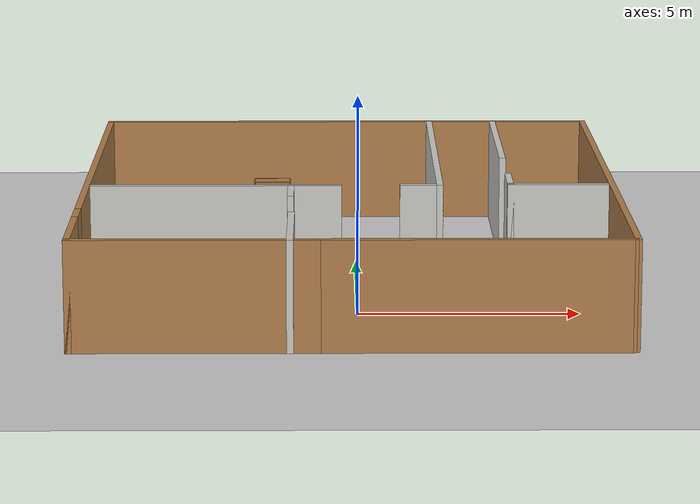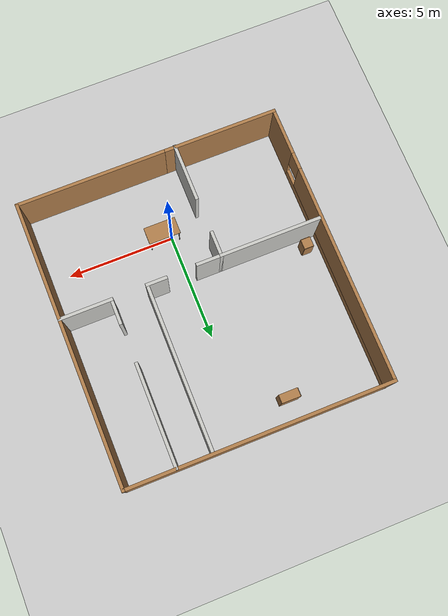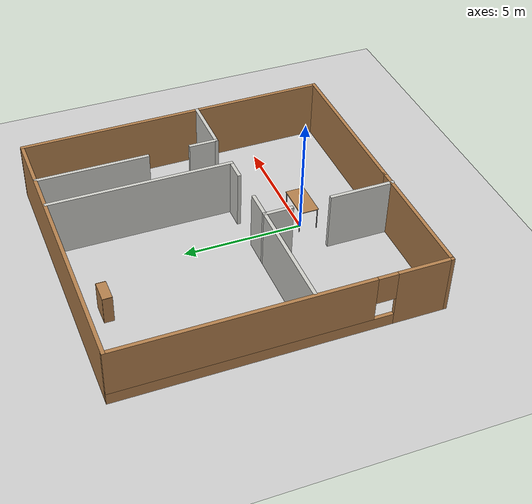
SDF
<sdf version="1.7">
 <world name="default">
  <light name="sun" type="directional">
   <pose>0 0 10 0 -0 0</pose>
   <diffuse>0.8 0.8 0.8 1</diffuse>
   <specular>0.2 0.2 0.2 1</specular>
   <attenuation>
    <range>1000</range>
    <constant>0.9</constant>
    <linear>0.01</linear>
    <quadratic>0.001</quadratic>
   </attenuation>
   <direction>-0.5 0.1 -0.9</direction>
   <spot><inner_angle>0</inner_angle><outer_angle>0</outer_angle><falloff>0</falloff></spot>
  </light>
  <model name="ground_plane">
   <static>1</static>
   <link name="link">
    <collision name="collision">
     <geometry><plane><normal>0 0 1</normal><size>100 100</size></plane></geometry>
     <surface>
      <contact><collide_bitmask>65535</collide_bitmask></contact>
      <friction><ode><mu>100</mu><mu2>50</mu2></ode></friction>
     </surface>
    </collision>
    <visual name="visual">
     <cast_shadows>0</cast_shadows>
     <geometry><plane><normal>0 0 1</normal><size>100 100</size></plane></geometry>
     <material>
      <script><uri>file://media/materials/scripts/gazebo.material</uri><name>Gazebo/Grey</name></script>
     </material>
    </visual>
   </link>
  </model>
  <gravity>0 0 -9.8</gravity>
  <magnetic_field>6e-06 2.3e-05 -4.2e-05</magnetic_field>
  <atmosphere type="adiabatic"/>
  <physics type="ode">
   <max_step_size>0.001</max_step_size>
   <real_time_factor>1</real_time_factor>
   <real_time_update_rate>1000</real_time_update_rate>
  </physics>
  <scene><ambient>0.4 0.4 0.4 1</ambient><background>0.7 0.7 0.7 1</background><shadows>1</shadows></scene>
  <spherical_coordinates>
   <surface_model>EARTH_WGS84</surface_model>
   <latitude_deg>0</latitude_deg>
   <longitude_deg>0</longitude_deg>
   <elevation>0</elevation>
   <heading_deg>0</heading_deg>
  </spherical_coordinates>
  <model name="IKEA">
   <pose>-0.13972 3.3674 0 0 -0 0</pose>
   <link name="Wall_1">
    <collision name="Wall_1_Collision">
     <geometry><box><size>7 0.15 2.5</size></box></geometry>
     <pose>0 0 1.25 0 -0 0</pose>
    </collision>
    <visual name="Wall_1_Visual">
     <pose>0 0 1.25 0 -0 0</pose>
     <geometry><box><size>7 0.15 2.5</size></box></geometry>
     <material>
      <script><uri>file://media/materials/scripts/gazebo.material</uri><name>Gazebo/Wood</name></script>
      <ambient>1 1 1 1</ambient>
     </material>
     <meta><layer>0</layer></meta>
    </visual>
    <pose>2.67471 -6.5374 0 0 -0 0</pose>
   </link>
   <link name="Wall_15">
    <collision name="Wall_15_Collision">
     <geometry><box><size>2.75 0.15 2.5</size></box></geometry>
     <pose>0 0 1.25 0 -0 0</pose>
    </collision>
    <visual name="Wall_15_Visual">
     <pose>0 0 1.25 0 -0 0</pose>
     <geometry><box><size>2.75 0.15 2.5</size></box></geometry>
     <material>
      <script><uri>file://media/materials/scripts/gazebo.material</uri><name>Gazebo/CeilingTiled</name></script>
      <ambient>0.435294 0.796078 0.67451 1</ambient>
     </material>
     <meta><layer>0</layer></meta>
    </visual>
    <pose>-1.34038 -5.26318 0 0 -0 1.5708</pose>
   </link>
   <link name="Wall_17">
    <collision name="Wall_17_Collision">
     <geometry><box><size>1.25 0.15 2.5</size></box></geometry>
     <pose>0 0 1.25 0 -0 0</pose>
    </collision>
    <visual name="Wall_17_Visual">
     <pose>0 0 1.25 0 -0 0</pose>
     <geometry><box><size>1.25 0.15 2.5</size></box></geometry>
     <material>
      <script><uri>file://media/materials/scripts/gazebo.material</uri><name>Gazebo/CeilingTiled</name></script>
      <ambient>0.435294 0.796078 0.67451 1</ambient>
     </material>
     <meta><layer>0</layer></meta>
    </visual>
    <pose>-1.38084 -1.68443 0 0 -0 1.5708</pose>
   </link>
   <link name="Wall_18">
    <collision name="Wall_18_Collision">
     <geometry><box><size>4.75 0.15 2.5</size></box></geometry>
     <pose>0 0 1.25 0 -0 0</pose>
    </collision>
    <visual name="Wall_18_Visual">
     <pose>0 0 1.25 0 -0 0</pose>
     <geometry><box><size>4.75 0.15 2.5</size></box></geometry>
     <material>
      <script><uri>file://media/materials/scripts/gazebo.material</uri><name>Gazebo/CeilingTiled</name></script>
      <ambient>0.435294 0.796078 0.67451 1</ambient>
     </material>
     <meta><layer>0</layer></meta>
    </visual>
    <pose>-3.68084 -1.13443 0 0 -0 3.14159</pose>
   </link>
   <link name="Wall_20">
    <collision name="Wall_20_Collision">
     <geometry><box><size>1.25 0.15 2.5</size></box></geometry>
     <pose>0 0 1.25 0 -0 0</pose>
    </collision>
    <visual name="Wall_20_Visual">
     <pose>0 0 1.25 0 -0 0</pose>
     <geometry><box><size>1.25 0.15 2.5</size></box></geometry>
     <material>
      <script><uri>file://media/materials/scripts/gazebo.material</uri><name>Gazebo/CeilingTiled</name></script>
      <ambient>0.435294 0.796078 0.67451 1</ambient>
     </material>
     <meta><layer>0</layer></meta>
    </visual>
    <pose>-0.83084 -1.13443 0 0 -0 0</pose>
   </link>
   <link name="Wall_22">
    <collision name="Wall_22_Collision">
     <geometry><box><size>1 0.15 2.5</size></box></geometry>
     <pose>0 0 1.25 0 -0 0</pose>
    </collision>
    <visual name="Wall_22_Visual">
     <pose>0 0 1.25 0 -0 0</pose>
     <geometry><box><size>1 0.15 2.5</size></box></geometry>
     <material>
      <script><uri>file://media/materials/scripts/gazebo.material</uri><name>Gazebo/CeilingTiled</name></script>
      <ambient>0.435294 0.796078 0.67451 1</ambient>
     </material>
     <meta><layer>0</layer></meta>
    </visual>
    <pose>1.63654 -1.08535 0 0 -0 0</pose>
   </link>
   <link name="Wall_23">
    <collision name="Wall_23_Collision">
     <geometry><box><size>7.75 0.15 2.5</size></box></geometry>
     <pose>0 0 1.25 0 -0 0</pose>
    </collision>
    <visual name="Wall_23_Visual">
     <pose>0 0 1.25 0 -0 0</pose>
     <geometry><box><size>7.75 0.15 2.5</size></box></geometry>
     <material>
      <script><uri>file://media/materials/scripts/gazebo.material</uri><name>Gazebo/CeilingTiled</name></script>
      <ambient>0.435294 0.796078 0.67451 1</ambient>
     </material>
     <meta><layer>0</layer></meta>
    </visual>
    <pose>2.06154 2.71465 0 0 -0 1.5708</pose>
   </link>
   <link name="Wall_25">
    <collision name="Wall_25_Collision">
     <geometry><box><size>2.5 0.15 2.5</size></box></geometry>
     <pose>0 0 1.25 0 -0 0</pose>
    </collision>
    <visual name="Wall_25_Visual">
     <pose>0 0 1.25 0 -0 0</pose>
     <geometry><box><size>2.5 0.15 2.5</size></box></geometry>
     <material>
      <script><uri>file://media/materials/scripts/gazebo.material</uri><name>Gazebo/CeilingTiled</name></script>
      <ambient>0.435294 0.796078 0.67451 1</ambient>
     </material>
     <meta><layer>0</layer></meta>
    </visual>
    <pose>4.87909 -1.04391 0 0 -0 0</pose>
   </link>
   <link name="Wall_27">
    <collision name="Wall_27_Collision">
     <geometry><box><size>1.25 0.15 2.5</size></box></geometry>
     <pose>0 0 1.25 0 -0 0</pose>
    </collision>
    <visual name="Wall_27_Visual">
     <pose>0 0 1.25 0 -0 0</pose>
     <geometry><box><size>1.25 0.15 2.5</size></box></geometry>
     <material>
      <script><uri>file://media/materials/scripts/gazebo.material</uri><name>Gazebo/CeilingTiled</name></script>
      <ambient>0.435294 0.796078 0.67451 1</ambient>
     </material>
     <meta><layer>0</layer></meta>
    </visual>
    <pose>3.70409 -0.493908 0 0 -0 1.5708</pose>
   </link>
   <link name="Wall_3">
    <collision name="Wall_3_Collision">
     <geometry><box><size>5.5 0.15 2.5</size></box></geometry>
     <pose>0 0 1.25 0 -0 0</pose>
    </collision>
    <visual name="Wall_3_Visual">
     <pose>0 0 1.25 0 -0 0</pose>
     <geometry><box><size>5.5 0.15 2.5</size></box></geometry>
     <material>
      <script><uri>file://media/materials/scripts/gazebo.material</uri><name>Gazebo/Wood</name></script>
      <ambient>1 1 1 1</ambient>
     </material>
     <meta><layer>0</layer></meta>
    </visual>
    <pose>-3.42529 -6.5374 0 0 -0 3.14159</pose>
   </link>
   <link name="Wall_31">
    <collision name="Wall_31_Collision">
     <geometry><box><size>4.75 0.15 2.5</size></box></geometry>
     <pose>0 0 1.25 0 -0 0</pose>
    </collision>
    <visual name="Wall_31_Visual">
     <pose>0 0 1.25 0 -0 0</pose>
     <geometry><box><size>4.75 0.15 2.5</size></box></geometry>
     <material>
      <script><uri>file://media/materials/scripts/gazebo.material</uri><name>Gazebo/CeilingTiled</name></script>
      <ambient>0.435294 0.796078 0.67451 1</ambient>
     </material>
     <meta><layer>0</layer></meta>
    </visual>
    <pose>3.68296 4.23961 0 0 -0 1.5708</pose>
   </link>
   <link name="Wall_4">
    <pose>-6.10029 0.012604 0 0 -0 1.5708</pose>
    <visual name="Wall_4_Visual_0">
     <pose>-5.4916 0 1.25 0 -0 0</pose>
     <geometry><box><size>2.26679 0.15 2.5</size></box></geometry>
     <material>
      <script><uri>file://media/materials/scripts/gazebo.material</uri><name>Gazebo/Wood</name></script>
      <ambient>1 1 1 1</ambient>
     </material>
     <meta><layer>0</layer></meta>
    </visual>
    <collision name="Wall_4_Collision_0">
     <geometry><box><size>2.26679 0.15 2.5</size></box></geometry>
     <pose>-5.4916 0 1.25 0 -0 0</pose>
    </collision>
    <visual name="Wall_4_Visual_1">
     <pose>1.1334 0 0.25 0 -0 0</pose>
     <geometry><box><size>10.9832 0.15 0.5</size></box></geometry>
     <material>
      <script><uri>file://media/materials/scripts/gazebo.material</uri><name>Gazebo/Wood</name></script>
      <ambient>1 1 1 1</ambient>
     </material>
     <meta><layer>0</layer></meta>
    </visual>
    <collision name="Wall_4_Collision_1">
     <geometry><box><size>10.9832 0.15 0.5</size></box></geometry>
     <pose>1.1334 0 0.25 0 -0 0</pose>
    </collision>
    <visual name="Wall_4_Visual_2">
     <pose>1.5334 0 1.5 0 -0 0</pose>
     <geometry><box><size>10.1832 0.15 2</size></box></geometry>
     <material>
      <script><uri>file://media/materials/scripts/gazebo.material</uri><name>Gazebo/Wood</name></script>
      <ambient>1 1 1 1</ambient>
     </material>
     <meta><layer>0</layer></meta>
    </visual>
    <collision name="Wall_4_Collision_2">
     <geometry><box><size>10.1832 0.15 2</size></box></geometry>
     <pose>1.5334 0 1.5 0 -0 0</pose>
    </collision>
    <visual name="Wall_4_Visual_3">
     <pose>-3.95821 0 1.9 0 -0 0</pose>
     <geometry><box><size>0.8 0.15 1.2</size></box></geometry>
     <material>
      <script><uri>file://media/materials/scripts/gazebo.material</uri><name>Gazebo/Wood</name></script>
      <ambient>1 1 1 1</ambient>
     </material>
     <meta><layer>0</layer></meta>
    </visual>
    <collision name="Wall_4_Collision_3">
     <geometry><box><size>0.8 0.15 1.2</size></box></geometry>
     <pose>-3.95821 0 1.9 0 -0 0</pose>
    </collision>
   </link>
   <link name="Wall_5">
    <collision name="Wall_5_Collision">
     <geometry><box><size>12.25 0.15 2.5</size></box></geometry>
     <pose>0 0 1.25 0 -0 0</pose>
    </collision>
    <visual name="Wall_5_Visual">
     <pose>0 0 1.25 0 -0 0</pose>
     <geometry><box><size>12.25 0.15 2.5</size></box></geometry>
     <material>
      <script><uri>file://media/materials/scripts/gazebo.material</uri><name>Gazebo/Wood</name></script>
      <ambient>1 1 1 1</ambient>
     </material>
     <meta><layer>0</layer></meta>
    </visual>
    <pose>-0.050285 6.5626 0 0 -0 0</pose>
   </link>
   <link name="Wall_6">
    <collision name="Wall_6_Collision">
     <geometry><box><size>13.2504 0.15 2.5</size></box></geometry>
     <pose>0 0 1.25 0 -0 0</pose>
    </collision>
    <visual name="Wall_6_Visual">
     <pose>0 0 1.25 0 -0 0</pose>
     <geometry><box><size>13.2504 0.15 2.5</size></box></geometry>
     <material>
      <script><uri>file://media/materials/scripts/gazebo.material</uri><name>Gazebo/Wood</name></script>
      <ambient>1 1 1 1</ambient>
     </material>
     <meta><layer>0</layer></meta>
    </visual>
    <pose>6.04971 0.012604 0 0 -0 -1.56316</pose>
   </link>
   <static>1</static>
  </model>
  <model name="table">
   <static>1</static>
   <link name="link">
    <collision name="surface">
     <pose>0 0 1 0 -0 0</pose>
     <geometry><box><size>1.5 0.8 0.03</size></box></geometry>
     <surface><friction><ode><mu>0.6</mu><mu2>0.6</mu2></ode></friction></surface>
    </collision>
    <visual name="visual1">
     <pose>0 0 1 0 -0 0</pose>
     <geometry><box><size>1.5 0.8 0.03</size></box></geometry>
     <material>
      <script><uri>file://media/materials/scripts/gazebo.material</uri><name>Gazebo/Wood</name></script>
     </material>
    </visual>
    <collision name="front_left_leg">
     <pose>0.68 0.38 0.5 0 -0 0</pose>
     <geometry><cylinder><radius>0.02</radius><length>1</length></cylinder></geometry>
    </collision>
    <visual name="front_left_leg">
     <pose>0.68 0.38 0.5 0 -0 0</pose>
     <geometry><cylinder><radius>0.02</radius><length>1</length></cylinder></geometry>
     <material>
      <script><uri>file://media/materials/scripts/gazebo.material</uri><name>Gazebo/Grey</name></script>
     </material>
    </visual>
    <collision name="front_right_leg">
     <pose>0.68 -0.38 0.5 0 -0 0</pose>
     <geometry><cylinder><radius>0.02</radius><length>1</length></cylinder></geometry>
    </collision>
    <visual name="front_right_leg">
     <pose>0.68 -0.38 0.5 0 -0 0</pose>
     <geometry><cylinder><radius>0.02</radius><length>1</length></cylinder></geometry>
     <material>
      <script><uri>file://media/materials/scripts/gazebo.material</uri><name>Gazebo/Grey</name></script>
     </material>
    </visual>
    <collision name="back_right_leg">
     <pose>-0.68 -0.38 0.5 0 -0 0</pose>
     <geometry><cylinder><radius>0.02</radius><length>1</length></cylinder></geometry>
    </collision>
    <visual name="back_right_leg">
     <pose>-0.68 -0.38 0.5 0 -0 0</pose>
     <geometry><cylinder><radius>0.02</radius><length>1</length></cylinder></geometry>
     <material>
      <script><uri>file://media/materials/scripts/gazebo.material</uri><name>Gazebo/Grey</name></script>
     </material>
    </visual>
    <collision name="back_left_leg">
     <pose>-0.68 0.38 0.5 0 -0 0</pose>
     <geometry><cylinder><radius>0.02</radius><length>1</length></cylinder></geometry>
    </collision>
    <visual name="back_left_leg">
     <pose>-0.68 0.38 0.5 0 -0 0</pose>
     <geometry><cylinder><radius>0.02</radius><length>1</length></cylinder></geometry>
     <material>
      <script><uri>file://media/materials/scripts/gazebo.material</uri><name>Gazebo/Grey</name></script>
     </material>
    </visual>
   </link>
   <pose>0.357826 -0.211657 0 0 -0 0</pose>
  </model>
  <model name="cabinet">
   <static>1</static>
   <link name="cabinet_bottom_plate">
    <inertial>
     <pose>0 0 -1 0 -0 0</pose>
     <inertia><ixx>2.05</ixx><ixy>0</ixy><ixz>0</ixz><iyy>2.05</iyy><iyz>0</iyz><izz>2.05</izz></inertia>
     <mass>25</mass>
    </inertial>
    <collision name="cabinet_bottom_plate_geom">
     <pose>0 0 0.01 0 -0 0</pose>
     <geometry><box><size>0.45 0.45 0.02</size></box></geometry>
    </collision>
    <visual name="cabinet_bottom_plate_geom_visual">
     <pose>0 0 0.01 0 -0 0</pose>
     <geometry><box><size>0.45 0.45 0.02</size></box></geometry>
     <material>
      <script><uri>file://media/materials/scripts/gazebo.material</uri><name>Gazebo/Wood</name></script>
     </material>
    </visual>
    <collision name="cabinet_bottom_plate_geom_cabinet_back_plate">
     <pose>0.235 0 0.51 0 -0 0</pose>
     <geometry><box><size>0.02 0.45 1.02</size></box></geometry>
    </collision>
    <visual name="cabinet_bottom_plate_geom_cabinet_back_plate_visual">
     <pose>0.235 0 0.51 0 -0 0</pose>
     <geometry><box><size>0.02 0.45 1.02</size></box></geometry>
     <material>
      <script><uri>file://media/materials/scripts/gazebo.material</uri><name>Gazebo/Wood</name></script>
     </material>
    </visual>
    <collision name="cabinet_bottom_plate_geom_cabinet_left_plate">
     <pose>0 0.235 0.51 0 -0 0</pose>
     <geometry><box><size>0.45 0.02 1.02</size></box></geometry>
    </collision>
    <visual name="cabinet_bottom_plate_geom_cabinet_left_plate_visual">
     <pose>0 0.235 0.51 0 -0 0</pose>
     <geometry><box><size>0.45 0.02 1.02</size></box></geometry>
     <material>
      <script><uri>file://media/materials/scripts/gazebo.material</uri><name>Gazebo/Wood</name></script>
     </material>
    </visual>
    <collision name="cabinet_bottom_plate_geom_cabinet_middle_plate">
     <pose>0 0 0.51 0 -0 0</pose>
     <geometry><box><size>0.45 0.45 0.02</size></box></geometry>
    </collision>
    <visual name="cabinet_bottom_plate_geom_cabinet_middle_plate_visual">
     <pose>0 0 0.51 0 -0 0</pose>
     <geometry><box><size>0.45 0.45 0.02</size></box></geometry>
     <material>
      <script><uri>file://media/materials/scripts/gazebo.material</uri><name>Gazebo/Wood</name></script>
     </material>
    </visual>
    <collision name="cabinet_bottom_plate_geom_cabinet_right_plate">
     <pose>0 -0.235 0.51 0 -0 0</pose>
     <geometry><box><size>0.45 0.02 1.02</size></box></geometry>
    </collision>
    <visual name="cabinet_bottom_plate_geom_cabinet_right_plate_visual">
     <pose>0 -0.235 0.51 0 -0 0</pose>
     <geometry><box><size>0.45 0.02 1.02</size></box></geometry>
     <material>
      <script><uri>file://media/materials/scripts/gazebo.material</uri><name>Gazebo/Wood</name></script>
     </material>
    </visual>
    <collision name="cabinet_bottom_plate_geom_cabinet_top_plate">
     <pose>0 0 1.01 0 -0 0</pose>
     <geometry><box><size>0.45 0.45 0.02</size></box></geometry>
    </collision>
    <visual name="cabinet_bottom_plate_geom_cabinet_top_plate_visual">
     <pose>0 0 1.01 0 -0 0</pose>
     <geometry><box><size>0.45 0.45 0.02</size></box></geometry>
     <material>
      <script><uri>file://media/materials/scripts/gazebo.material</uri><name>Gazebo/Wood</name></script>
     </material>
    </visual>
   </link>
   <pose>-5.53908 2.74555 0 0 -0 0</pose>
  </model>
  <model name="bookshelf">
   <static>1</static>
   <link name="link">
    <inertial><mass>1</mass></inertial>
    <collision name="back">
     <pose>0 0.005 0.6 0 -0 0</pose>
     <geometry><box><size>0.9 0.01 1.2</size></box></geometry>
    </collision>
    <visual name="visual1">
     <pose>0 0.005 0.6 0 -0 0</pose>
     <geometry><box><size>0.9 0.01 1.2</size></box></geometry>
     <material>
      <script><uri>file://media/materials/scripts/gazebo.material</uri><name>Gazebo/Wood</name></script>
     </material>
    </visual>
    <collision name="left_side">
     <pose>0.45 -0.195 0.6 0 -0 0</pose>
     <geometry><box><size>0.02 0.4 1.2</size></box></geometry>
    </collision>
    <visual name="visual2">
     <pose>0.45 -0.195 0.6 0 -0 0</pose>
     <geometry><box><size>0.02 0.4 1.2</size></box></geometry>
     <material>
      <script><uri>file://media/materials/scripts/gazebo.material</uri><name>Gazebo/Wood</name></script>
     </material>
    </visual>
    <collision name="right_side">
     <pose>-0.45 -0.195 0.6 0 -0 0</pose>
     <geometry><box><size>0.02 0.4 1.2</size></box></geometry>
    </collision>
    <visual name="visual3">
     <pose>-0.45 -0.195 0.6 0 -0 0</pose>
     <geometry><box><size>0.02 0.4 1.2</size></box></geometry>
     <material>
      <script><uri>file://media/materials/scripts/gazebo.material</uri><name>Gazebo/Wood</name></script>
     </material>
    </visual>
    <collision name="bottom">
     <pose>0 -0.195 0.03 0 -0 0</pose>
     <geometry><box><size>0.88 0.4 0.06</size></box></geometry>
    </collision>
    <visual name="visual4">
     <pose>0 -0.195 0.03 0 -0 0</pose>
     <geometry><box><size>0.88 0.4 0.06</size></box></geometry>
     <material>
      <script><uri>file://media/materials/scripts/gazebo.material</uri><name>Gazebo/Wood</name></script>
     </material>
    </visual>
    <collision name="top">
     <pose>0 -0.195 1.19 0 -0 0</pose>
     <geometry><box><size>0.88 0.4 0.02</size></box></geometry>
    </collision>
    <visual name="visual5">
     <pose>0 -0.195 1.19 0 -0 0</pose>
     <geometry><box><size>0.88 0.4 0.02</size></box></geometry>
     <material>
      <script><uri>file://media/materials/scripts/gazebo.material</uri><name>Gazebo/Wood</name></script>
     </material>
    </visual>
    <collision name="low_shelf">
     <pose>0 -0.195 0.43 0 -0 0</pose>
     <geometry><box><size>0.88 0.4 0.02</size></box></geometry>
    </collision>
    <visual name="visual6">
     <pose>0 -0.195 0.43 0 -0 0</pose>
     <geometry><box><size>0.88 0.4 0.02</size></box></geometry>
     <material>
      <script><uri>file://media/materials/scripts/gazebo.material</uri><name>Gazebo/Wood</name></script>
     </material>
    </visual>
    <collision name="high_shelf">
     <pose>0 -0.195 0.8 0 -0 0</pose>
     <geometry><box><size>0.88 0.4 0.02</size></box></geometry>
    </collision>
    <visual name="visual7">
     <pose>0 -0.195 0.8 0 -0 0</pose>
     <geometry><box><size>0.88 0.4 0.02</size></box></geometry>
     <material>
      <script><uri>file://media/materials/scripts/gazebo.material</uri><name>Gazebo/Wood</name></script>
     </material>
    </visual>
   </link>
   <pose>-2.08334 9.00063 0 0 -0 0</pose>
  </model>
 </world>
</sdf>
